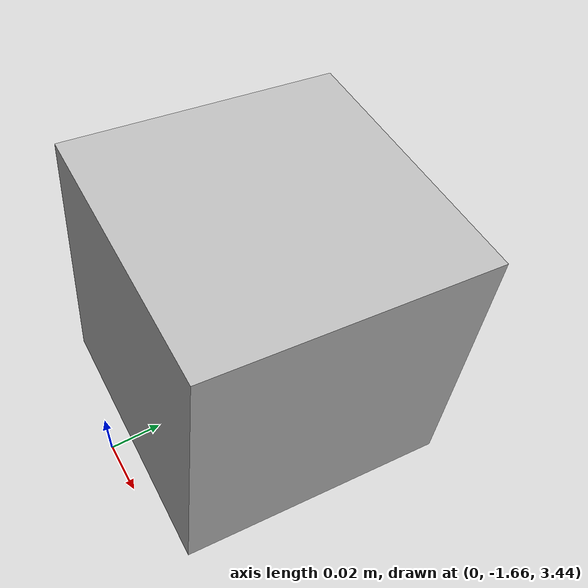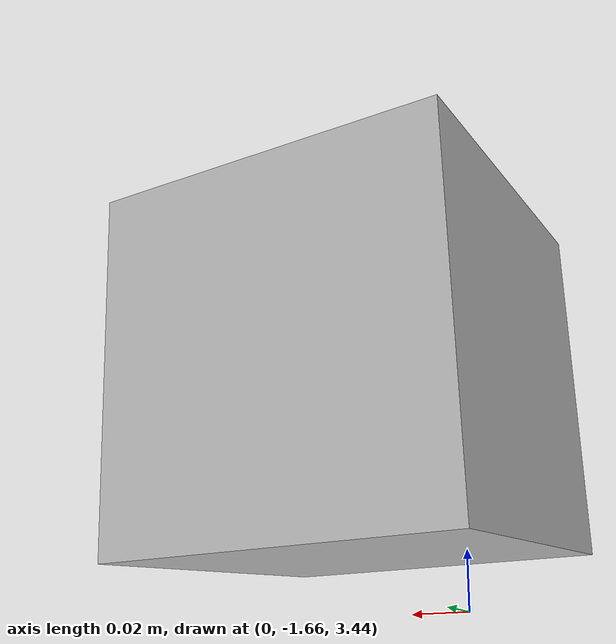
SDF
<?xml version="1.0" ?>
<sdf version="1.5">
  <model name="camera">
    <link name="link">
      <gravity>0</gravity>
      <pose>0.01 -1.6 3.5 1.5 1.65 1.47</pose>
      <inertial>
        <mass>0.1</mass>
        <inertia>
          <ixx>0.000</ixx>
          <iyy>0.000</iyy>
          <izz>0.000</izz>
        </inertia>
      </inertial>
      <collision name="collision">
        <geometry>
          <box>
            <size>0.1 0.1 0.1</size>
          </box>
        </geometry>
      </collision>
      <visual name="visual">
        <geometry>
          <box>
            <size>0.1 0.1 0.1</size>
          </box>
        </geometry>
      </visual>
      <sensor name="camera" type="camera">
        <camera>
          <horizontal_fov>1.047</horizontal_fov>
          <image>
            <width>720</width>
            <height>480</height>
          </image>
          <clip>
            <near>0.1</near>
            <far>100</far>
          </clip>
        </camera>
        <always_on>1</always_on>
        <update_rate>30</update_rate>
        <visualize>true</visualize>
        <plugin name="camera_controller" filename="libgazebo_ros_camera.so">
          <alwaysOn>true</alwaysOn>
          <updateRate>30.0</updateRate>
          <cameraName>pp/camera1</cameraName>
          <imageTopicName>image_raw</imageTopicName>
          <cameraInfoTopicName>camera_info</cameraInfoTopicName>
          <frameName>camera_link</frameName>
          <hackBaseline>0.07</hackBaseline>
          <distortionK1>0.0</distortionK1>
          <distortionK2>0.0</distortionK2>
          <distortionK3>0.0</distortionK3>
          <distortionT1>0.0</distortionT1>
          <distortionT2>0.0</distortionT2>
        </plugin>
      </sensor>
    </link>
  </model>
</sdf>
